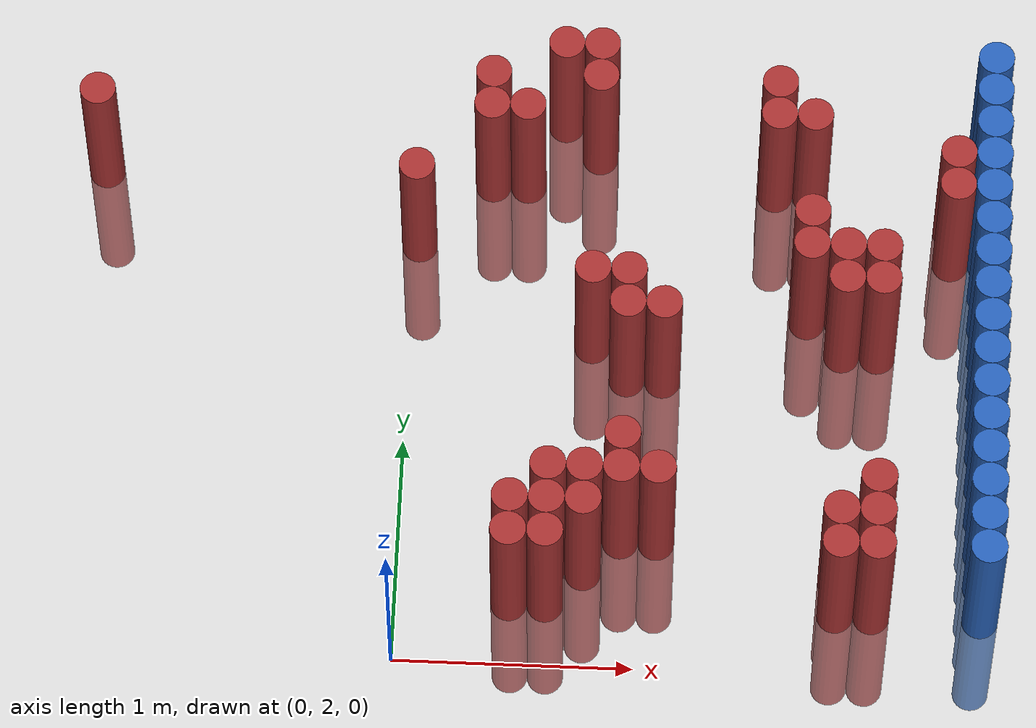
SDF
<sdf version="1.6">
 <world name="default">
  <model name="ground_plane">
   <static>1</static>
   <link name="link">
    <collision name="collision">
     <geometry><plane><normal>0 0 1</normal><size>100 100</size></plane></geometry>
     <surface><friction><ode><mu>100</mu><mu2>50</mu2></ode></friction></surface>
    </collision>
    <visual name="visual">
     <cast_shadows>0</cast_shadows>
     <geometry><plane><normal>0 0 1</normal><size>100 100</size></plane></geometry>
     <material>
      <script><uri>file://media/materials/scripts/gazebo.material</uri><name>Gazebo/Grey</name></script>
     </material>
    </visual>
   </link>
  </model>
  <model name="unit_cylinder_153">
   <static>1</static>
   <pose>-1.325000 4.225000 0.000000 0.000000 0.000000 0.000000</pose>
   <link name="link">
    <inertial>
     <mass>1</mass>
     <inertia><ixx>0.145833</ixx><ixy>0</ixy><ixz>0</ixz><iyy>0.145833</iyy><iyz>0</iyz><izz>0.125</izz></inertia>
    </inertial>
    <collision name="collision">
     <geometry><cylinder><radius>0.075000</radius><length>1.5</length></cylinder></geometry>
    </collision>
    <visual name="visual">
     <geometry><cylinder><radius>0.075000</radius><length>1.5</length></cylinder></geometry>
     <material>
      <ambient>0.648000 0.192000 0.192000 1</ambient>
      <diffuse>0.648000 0.192000 0.192000 1</diffuse>
     </material>
     <material>
      <script><name>Gazebo/Grey</name><uri>file://media/materials/scripts/gazebo.material</uri></script>
     </material>
    </visual>
   </link>
  </model>
  <model name="unit_cylinder_157">
   <static>1</static>
   <pose>0.025000 3.925000 0.000000 0.000000 0.000000 0.000000</pose>
   <link name="link">
    <inertial>
     <mass>1</mass>
     <inertia><ixx>0.145833</ixx><ixy>0</ixy><ixz>0</ixz><iyy>0.145833</iyy><iyz>0</iyz><izz>0.125</izz></inertia>
    </inertial>
    <collision name="collision">
     <geometry><cylinder><radius>0.075000</radius><length>1.5</length></cylinder></geometry>
    </collision>
    <visual name="visual">
     <geometry><cylinder><radius>0.075000</radius><length>1.5</length></cylinder></geometry>
     <material>
      <ambient>0.648000 0.192000 0.192000 1</ambient>
      <diffuse>0.648000 0.192000 0.192000 1</diffuse>
     </material>
     <material>
      <script><name>Gazebo/Grey</name><uri>file://media/materials/scripts/gazebo.material</uri></script>
     </material>
    </visual>
   </link>
  </model>
  <model name="unit_cylinder_167">
   <static>1</static>
   <pose>0.325000 4.225000 0.000000 0.000000 0.000000 0.000000</pose>
   <link name="link">
    <inertial>
     <mass>1</mass>
     <inertia><ixx>0.145833</ixx><ixy>0</ixy><ixz>0</ixz><iyy>0.145833</iyy><iyz>0</iyz><izz>0.125</izz></inertia>
    </inertial>
    <collision name="collision">
     <geometry><cylinder><radius>0.075000</radius><length>1.5</length></cylinder></geometry>
    </collision>
    <visual name="visual">
     <geometry><cylinder><radius>0.075000</radius><length>1.5</length></cylinder></geometry>
     <material>
      <ambient>0.648000 0.192000 0.192000 1</ambient>
      <diffuse>0.648000 0.192000 0.192000 1</diffuse>
     </material>
     <material>
      <script><name>Gazebo/Grey</name><uri>file://media/materials/scripts/gazebo.material</uri></script>
     </material>
    </visual>
   </link>
  </model>
  <model name="unit_cylinder_168">
   <static>1</static>
   <pose>0.325000 4.375000 0.000000 0.000000 0.000000 0.000000</pose>
   <link name="link">
    <inertial>
     <mass>1</mass>
     <inertia><ixx>0.145833</ixx><ixy>0</ixy><ixz>0</ixz><iyy>0.145833</iyy><iyz>0</iyz><izz>0.125</izz></inertia>
    </inertial>
    <collision name="collision">
     <geometry><cylinder><radius>0.075000</radius><length>1.5</length></cylinder></geometry>
    </collision>
    <visual name="visual">
     <geometry><cylinder><radius>0.075000</radius><length>1.5</length></cylinder></geometry>
     <material>
      <ambient>0.648000 0.192000 0.192000 1</ambient>
      <diffuse>0.648000 0.192000 0.192000 1</diffuse>
     </material>
     <material>
      <script><name>Gazebo/Grey</name><uri>file://media/materials/scripts/gazebo.material</uri></script>
     </material>
    </visual>
   </link>
  </model>
  <model name="unit_cylinder_175">
   <static>1</static>
   <pose>0.475000 2.275000 0.000000 0.000000 0.000000 0.000000</pose>
   <link name="link">
    <inertial>
     <mass>1</mass>
     <inertia><ixx>0.145833</ixx><ixy>0</ixy><ixz>0</ixz><iyy>0.145833</iyy><iyz>0</iyz><izz>0.125</izz></inertia>
    </inertial>
    <collision name="collision">
     <geometry><cylinder><radius>0.075000</radius><length>1.5</length></cylinder></geometry>
    </collision>
    <visual name="visual">
     <geometry><cylinder><radius>0.075000</radius><length>1.5</length></cylinder></geometry>
     <material>
      <ambient>0.648000 0.192000 0.192000 1</ambient>
      <diffuse>0.648000 0.192000 0.192000 1</diffuse>
     </material>
     <material>
      <script><name>Gazebo/Grey</name><uri>file://media/materials/scripts/gazebo.material</uri></script>
     </material>
    </visual>
   </link>
  </model>
  <model name="unit_cylinder_176">
   <static>1</static>
   <pose>0.475000 2.425000 0.000000 0.000000 0.000000 0.000000</pose>
   <link name="link">
    <inertial>
     <mass>1</mass>
     <inertia><ixx>0.145833</ixx><ixy>0</ixy><ixz>0</ixz><iyy>0.145833</iyy><iyz>0</iyz><izz>0.125</izz></inertia>
    </inertial>
    <collision name="collision">
     <geometry><cylinder><radius>0.075000</radius><length>1.5</length></cylinder></geometry>
    </collision>
    <visual name="visual">
     <geometry><cylinder><radius>0.075000</radius><length>1.5</length></cylinder></geometry>
     <material>
      <ambient>0.648000 0.192000 0.192000 1</ambient>
      <diffuse>0.648000 0.192000 0.192000 1</diffuse>
     </material>
     <material>
      <script><name>Gazebo/Grey</name><uri>file://media/materials/scripts/gazebo.material</uri></script>
     </material>
    </visual>
   </link>
  </model>
  <model name="unit_cylinder_177">
   <static>1</static>
   <pose>0.475000 4.225000 0.000000 0.000000 0.000000 0.000000</pose>
   <link name="link">
    <inertial>
     <mass>1</mass>
     <inertia><ixx>0.145833</ixx><ixy>0</ixy><ixz>0</ixz><iyy>0.145833</iyy><iyz>0</iyz><izz>0.125</izz></inertia>
    </inertial>
    <collision name="collision">
     <geometry><cylinder><radius>0.075000</radius><length>1.5</length></cylinder></geometry>
    </collision>
    <visual name="visual">
     <geometry><cylinder><radius>0.075000</radius><length>1.5</length></cylinder></geometry>
     <material>
      <ambient>0.648000 0.192000 0.192000 1</ambient>
      <diffuse>0.648000 0.192000 0.192000 1</diffuse>
     </material>
     <material>
      <script><name>Gazebo/Grey</name><uri>file://media/materials/scripts/gazebo.material</uri></script>
     </material>
    </visual>
   </link>
  </model>
  <model name="unit_cylinder_178">
   <static>1</static>
   <pose>0.625000 2.275000 0.000000 0.000000 0.000000 0.000000</pose>
   <link name="link">
    <inertial>
     <mass>1</mass>
     <inertia><ixx>0.145833</ixx><ixy>0</ixy><ixz>0</ixz><iyy>0.145833</iyy><iyz>0</iyz><izz>0.125</izz></inertia>
    </inertial>
    <collision name="collision">
     <geometry><cylinder><radius>0.075000</radius><length>1.5</length></cylinder></geometry>
    </collision>
    <visual name="visual">
     <geometry><cylinder><radius>0.075000</radius><length>1.5</length></cylinder></geometry>
     <material>
      <ambient>0.648000 0.192000 0.192000 1</ambient>
      <diffuse>0.648000 0.192000 0.192000 1</diffuse>
     </material>
     <material>
      <script><name>Gazebo/Grey</name><uri>file://media/materials/scripts/gazebo.material</uri></script>
     </material>
    </visual>
   </link>
  </model>
  <model name="unit_cylinder_179">
   <static>1</static>
   <pose>0.625000 2.425000 0.000000 0.000000 0.000000 0.000000</pose>
   <link name="link">
    <inertial>
     <mass>1</mass>
     <inertia><ixx>0.145833</ixx><ixy>0</ixy><ixz>0</ixz><iyy>0.145833</iyy><iyz>0</iyz><izz>0.125</izz></inertia>
    </inertial>
    <collision name="collision">
     <geometry><cylinder><radius>0.075000</radius><length>1.5</length></cylinder></geometry>
    </collision>
    <visual name="visual">
     <geometry><cylinder><radius>0.075000</radius><length>1.5</length></cylinder></geometry>
     <material>
      <ambient>0.648000 0.192000 0.192000 1</ambient>
      <diffuse>0.648000 0.192000 0.192000 1</diffuse>
     </material>
     <material>
      <script><name>Gazebo/Grey</name><uri>file://media/materials/scripts/gazebo.material</uri></script>
     </material>
    </visual>
   </link>
  </model>
  <model name="unit_cylinder_180">
   <static>1</static>
   <pose>0.625000 2.575000 0.000000 0.000000 0.000000 0.000000</pose>
   <link name="link">
    <inertial>
     <mass>1</mass>
     <inertia><ixx>0.145833</ixx><ixy>0</ixy><ixz>0</ixz><iyy>0.145833</iyy><iyz>0</iyz><izz>0.125</izz></inertia>
    </inertial>
    <collision name="collision">
     <geometry><cylinder><radius>0.075000</radius><length>1.5</length></cylinder></geometry>
    </collision>
    <visual name="visual">
     <geometry><cylinder><radius>0.075000</radius><length>1.5</length></cylinder></geometry>
     <material>
      <ambient>0.648000 0.192000 0.192000 1</ambient>
      <diffuse>0.648000 0.192000 0.192000 1</diffuse>
     </material>
     <material>
      <script><name>Gazebo/Grey</name><uri>file://media/materials/scripts/gazebo.material</uri></script>
     </material>
    </visual>
   </link>
  </model>
  <model name="unit_cylinder_181">
   <static>1</static>
   <pose>0.625000 4.525000 0.000000 0.000000 0.000000 0.000000</pose>
   <link name="link">
    <inertial>
     <mass>1</mass>
     <inertia><ixx>0.145833</ixx><ixy>0</ixy><ixz>0</ixz><iyy>0.145833</iyy><iyz>0</iyz><izz>0.125</izz></inertia>
    </inertial>
    <collision name="collision">
     <geometry><cylinder><radius>0.075000</radius><length>1.5</length></cylinder></geometry>
    </collision>
    <visual name="visual">
     <geometry><cylinder><radius>0.075000</radius><length>1.5</length></cylinder></geometry>
     <material>
      <ambient>0.648000 0.192000 0.192000 1</ambient>
      <diffuse>0.648000 0.192000 0.192000 1</diffuse>
     </material>
     <material>
      <script><name>Gazebo/Grey</name><uri>file://media/materials/scripts/gazebo.material</uri></script>
     </material>
    </visual>
   </link>
  </model>
  <model name="unit_cylinder_184">
   <static>1</static>
   <pose>0.775000 2.425000 0.000000 0.000000 0.000000 0.000000</pose>
   <link name="link">
    <inertial>
     <mass>1</mass>
     <inertia><ixx>0.145833</ixx><ixy>0</ixy><ixz>0</ixz><iyy>0.145833</iyy><iyz>0</iyz><izz>0.125</izz></inertia>
    </inertial>
    <collision name="collision">
     <geometry><cylinder><radius>0.075000</radius><length>1.5</length></cylinder></geometry>
    </collision>
    <visual name="visual">
     <geometry><cylinder><radius>0.075000</radius><length>1.5</length></cylinder></geometry>
     <material>
      <ambient>0.648000 0.192000 0.192000 1</ambient>
      <diffuse>0.648000 0.192000 0.192000 1</diffuse>
     </material>
     <material>
      <script><name>Gazebo/Grey</name><uri>file://media/materials/scripts/gazebo.material</uri></script>
     </material>
    </visual>
   </link>
  </model>
  <model name="unit_cylinder_185">
   <static>1</static>
   <pose>0.775000 2.575000 0.000000 0.000000 0.000000 0.000000</pose>
   <link name="link">
    <inertial>
     <mass>1</mass>
     <inertia><ixx>0.145833</ixx><ixy>0</ixy><ixz>0</ixz><iyy>0.145833</iyy><iyz>0</iyz><izz>0.125</izz></inertia>
    </inertial>
    <collision name="collision">
     <geometry><cylinder><radius>0.075000</radius><length>1.5</length></cylinder></geometry>
    </collision>
    <visual name="visual">
     <geometry><cylinder><radius>0.075000</radius><length>1.5</length></cylinder></geometry>
     <material>
      <ambient>0.648000 0.192000 0.192000 1</ambient>
      <diffuse>0.648000 0.192000 0.192000 1</diffuse>
     </material>
     <material>
      <script><name>Gazebo/Grey</name><uri>file://media/materials/scripts/gazebo.material</uri></script>
     </material>
    </visual>
   </link>
  </model>
  <model name="unit_cylinder_186">
   <static>1</static>
   <pose>0.775000 3.475000 0.000000 0.000000 0.000000 0.000000</pose>
   <link name="link">
    <inertial>
     <mass>1</mass>
     <inertia><ixx>0.145833</ixx><ixy>0</ixy><ixz>0</ixz><iyy>0.145833</iyy><iyz>0</iyz><izz>0.125</izz></inertia>
    </inertial>
    <collision name="collision">
     <geometry><cylinder><radius>0.075000</radius><length>1.5</length></cylinder></geometry>
    </collision>
    <visual name="visual">
     <geometry><cylinder><radius>0.075000</radius><length>1.5</length></cylinder></geometry>
     <material>
      <ambient>0.648000 0.192000 0.192000 1</ambient>
      <diffuse>0.648000 0.192000 0.192000 1</diffuse>
     </material>
     <material>
      <script><name>Gazebo/Grey</name><uri>file://media/materials/scripts/gazebo.material</uri></script>
     </material>
    </visual>
   </link>
  </model>
  <model name="unit_cylinder_187">
   <static>1</static>
   <pose>0.775000 4.375000 0.000000 0.000000 0.000000 0.000000</pose>
   <link name="link">
    <inertial>
     <mass>1</mass>
     <inertia><ixx>0.145833</ixx><ixy>0</ixy><ixz>0</ixz><iyy>0.145833</iyy><iyz>0</iyz><izz>0.125</izz></inertia>
    </inertial>
    <collision name="collision">
     <geometry><cylinder><radius>0.075000</radius><length>1.5</length></cylinder></geometry>
    </collision>
    <visual name="visual">
     <geometry><cylinder><radius>0.075000</radius><length>1.5</length></cylinder></geometry>
     <material>
      <ambient>0.648000 0.192000 0.192000 1</ambient>
      <diffuse>0.648000 0.192000 0.192000 1</diffuse>
     </material>
     <material>
      <script><name>Gazebo/Grey</name><uri>file://media/materials/scripts/gazebo.material</uri></script>
     </material>
    </visual>
   </link>
  </model>
  <model name="unit_cylinder_188">
   <static>1</static>
   <pose>0.775000 4.525000 0.000000 0.000000 0.000000 0.000000</pose>
   <link name="link">
    <inertial>
     <mass>1</mass>
     <inertia><ixx>0.145833</ixx><ixy>0</ixy><ixz>0</ixz><iyy>0.145833</iyy><iyz>0</iyz><izz>0.125</izz></inertia>
    </inertial>
    <collision name="collision">
     <geometry><cylinder><radius>0.075000</radius><length>1.5</length></cylinder></geometry>
    </collision>
    <visual name="visual">
     <geometry><cylinder><radius>0.075000</radius><length>1.5</length></cylinder></geometry>
     <material>
      <ambient>0.648000 0.192000 0.192000 1</ambient>
      <diffuse>0.648000 0.192000 0.192000 1</diffuse>
     </material>
     <material>
      <script><name>Gazebo/Grey</name><uri>file://media/materials/scripts/gazebo.material</uri></script>
     </material>
    </visual>
   </link>
  </model>
  <model name="unit_cylinder_191">
   <static>1</static>
   <pose>0.925000 2.575000 0.000000 0.000000 0.000000 0.000000</pose>
   <link name="link">
    <inertial>
     <mass>1</mass>
     <inertia><ixx>0.145833</ixx><ixy>0</ixy><ixz>0</ixz><iyy>0.145833</iyy><iyz>0</iyz><izz>0.125</izz></inertia>
    </inertial>
    <collision name="collision">
     <geometry><cylinder><radius>0.075000</radius><length>1.5</length></cylinder></geometry>
    </collision>
    <visual name="visual">
     <geometry><cylinder><radius>0.075000</radius><length>1.5</length></cylinder></geometry>
     <material>
      <ambient>0.648000 0.192000 0.192000 1</ambient>
      <diffuse>0.648000 0.192000 0.192000 1</diffuse>
     </material>
     <material>
      <script><name>Gazebo/Grey</name><uri>file://media/materials/scripts/gazebo.material</uri></script>
     </material>
    </visual>
   </link>
  </model>
  <model name="unit_cylinder_192">
   <static>1</static>
   <pose>0.925000 2.725000 0.000000 0.000000 0.000000 0.000000</pose>
   <link name="link">
    <inertial>
     <mass>1</mass>
     <inertia><ixx>0.145833</ixx><ixy>0</ixy><ixz>0</ixz><iyy>0.145833</iyy><iyz>0</iyz><izz>0.125</izz></inertia>
    </inertial>
    <collision name="collision">
     <geometry><cylinder><radius>0.075000</radius><length>1.5</length></cylinder></geometry>
    </collision>
    <visual name="visual">
     <geometry><cylinder><radius>0.075000</radius><length>1.5</length></cylinder></geometry>
     <material>
      <ambient>0.648000 0.192000 0.192000 1</ambient>
      <diffuse>0.648000 0.192000 0.192000 1</diffuse>
     </material>
     <material>
      <script><name>Gazebo/Grey</name><uri>file://media/materials/scripts/gazebo.material</uri></script>
     </material>
    </visual>
   </link>
  </model>
  <model name="unit_cylinder_193">
   <static>1</static>
   <pose>0.925000 3.325000 0.000000 0.000000 0.000000 0.000000</pose>
   <link name="link">
    <inertial>
     <mass>1</mass>
     <inertia><ixx>0.145833</ixx><ixy>0</ixy><ixz>0</ixz><iyy>0.145833</iyy><iyz>0</iyz><izz>0.125</izz></inertia>
    </inertial>
    <collision name="collision">
     <geometry><cylinder><radius>0.075000</radius><length>1.5</length></cylinder></geometry>
    </collision>
    <visual name="visual">
     <geometry><cylinder><radius>0.075000</radius><length>1.5</length></cylinder></geometry>
     <material>
      <ambient>0.648000 0.192000 0.192000 1</ambient>
      <diffuse>0.648000 0.192000 0.192000 1</diffuse>
     </material>
     <material>
      <script><name>Gazebo/Grey</name><uri>file://media/materials/scripts/gazebo.material</uri></script>
     </material>
    </visual>
   </link>
  </model>
  <model name="unit_cylinder_194">
   <static>1</static>
   <pose>0.925000 3.475000 0.000000 0.000000 0.000000 0.000000</pose>
   <link name="link">
    <inertial>
     <mass>1</mass>
     <inertia><ixx>0.145833</ixx><ixy>0</ixy><ixz>0</ixz><iyy>0.145833</iyy><iyz>0</iyz><izz>0.125</izz></inertia>
    </inertial>
    <collision name="collision">
     <geometry><cylinder><radius>0.075000</radius><length>1.5</length></cylinder></geometry>
    </collision>
    <visual name="visual">
     <geometry><cylinder><radius>0.075000</radius><length>1.5</length></cylinder></geometry>
     <material>
      <ambient>0.648000 0.192000 0.192000 1</ambient>
      <diffuse>0.648000 0.192000 0.192000 1</diffuse>
     </material>
     <material>
      <script><name>Gazebo/Grey</name><uri>file://media/materials/scripts/gazebo.material</uri></script>
     </material>
    </visual>
   </link>
  </model>
  <model name="unit_cylinder_195">
   <static>1</static>
   <pose>1.075000 2.575000 0.000000 0.000000 0.000000 0.000000</pose>
   <link name="link">
    <inertial>
     <mass>1</mass>
     <inertia><ixx>0.145833</ixx><ixy>0</ixy><ixz>0</ixz><iyy>0.145833</iyy><iyz>0</iyz><izz>0.125</izz></inertia>
    </inertial>
    <collision name="collision">
     <geometry><cylinder><radius>0.075000</radius><length>1.5</length></cylinder></geometry>
    </collision>
    <visual name="visual">
     <geometry><cylinder><radius>0.075000</radius><length>1.5</length></cylinder></geometry>
     <material>
      <ambient>0.648000 0.192000 0.192000 1</ambient>
      <diffuse>0.648000 0.192000 0.192000 1</diffuse>
     </material>
     <material>
      <script><name>Gazebo/Grey</name><uri>file://media/materials/scripts/gazebo.material</uri></script>
     </material>
    </visual>
   </link>
  </model>
  <model name="unit_cylinder_196">
   <static>1</static>
   <pose>1.075000 3.325000 0.000000 0.000000 0.000000 0.000000</pose>
   <link name="link">
    <inertial>
     <mass>1</mass>
     <inertia><ixx>0.145833</ixx><ixy>0</ixy><ixz>0</ixz><iyy>0.145833</iyy><iyz>0</iyz><izz>0.125</izz></inertia>
    </inertial>
    <collision name="collision">
     <geometry><cylinder><radius>0.075000</radius><length>1.5</length></cylinder></geometry>
    </collision>
    <visual name="visual">
     <geometry><cylinder><radius>0.075000</radius><length>1.5</length></cylinder></geometry>
     <material>
      <ambient>0.648000 0.192000 0.192000 1</ambient>
      <diffuse>0.648000 0.192000 0.192000 1</diffuse>
     </material>
     <material>
      <script><name>Gazebo/Grey</name><uri>file://media/materials/scripts/gazebo.material</uri></script>
     </material>
    </visual>
   </link>
  </model>
  <model name="unit_cylinder_201">
   <static>1</static>
   <pose>1.525000 4.225000 0.000000 0.000000 0.000000 0.000000</pose>
   <link name="link">
    <inertial>
     <mass>1</mass>
     <inertia><ixx>0.145833</ixx><ixy>0</ixy><ixz>0</ixz><iyy>0.145833</iyy><iyz>0</iyz><izz>0.125</izz></inertia>
    </inertial>
    <collision name="collision">
     <geometry><cylinder><radius>0.075000</radius><length>1.5</length></cylinder></geometry>
    </collision>
    <visual name="visual">
     <geometry><cylinder><radius>0.075000</radius><length>1.5</length></cylinder></geometry>
     <material>
      <ambient>0.648000 0.192000 0.192000 1</ambient>
      <diffuse>0.648000 0.192000 0.192000 1</diffuse>
     </material>
     <material>
      <script><name>Gazebo/Grey</name><uri>file://media/materials/scripts/gazebo.material</uri></script>
     </material>
    </visual>
   </link>
  </model>
  <model name="unit_cylinder_202">
   <static>1</static>
   <pose>1.525000 4.375000 0.000000 0.000000 0.000000 0.000000</pose>
   <link name="link">
    <inertial>
     <mass>1</mass>
     <inertia><ixx>0.145833</ixx><ixy>0</ixy><ixz>0</ixz><iyy>0.145833</iyy><iyz>0</iyz><izz>0.125</izz></inertia>
    </inertial>
    <collision name="collision">
     <geometry><cylinder><radius>0.075000</radius><length>1.5</length></cylinder></geometry>
    </collision>
    <visual name="visual">
     <geometry><cylinder><radius>0.075000</radius><length>1.5</length></cylinder></geometry>
     <material>
      <ambient>0.648000 0.192000 0.192000 1</ambient>
      <diffuse>0.648000 0.192000 0.192000 1</diffuse>
     </material>
     <material>
      <script><name>Gazebo/Grey</name><uri>file://media/materials/scripts/gazebo.material</uri></script>
     </material>
    </visual>
   </link>
  </model>
  <model name="unit_cylinder_203">
   <static>1</static>
   <pose>1.675000 3.625000 0.000000 0.000000 0.000000 0.000000</pose>
   <link name="link">
    <inertial>
     <mass>1</mass>
     <inertia><ixx>0.145833</ixx><ixy>0</ixy><ixz>0</ixz><iyy>0.145833</iyy><iyz>0</iyz><izz>0.125</izz></inertia>
    </inertial>
    <collision name="collision">
     <geometry><cylinder><radius>0.075000</radius><length>1.5</length></cylinder></geometry>
    </collision>
    <visual name="visual">
     <geometry><cylinder><radius>0.075000</radius><length>1.5</length></cylinder></geometry>
     <material>
      <ambient>0.648000 0.192000 0.192000 1</ambient>
      <diffuse>0.648000 0.192000 0.192000 1</diffuse>
     </material>
     <material>
      <script><name>Gazebo/Grey</name><uri>file://media/materials/scripts/gazebo.material</uri></script>
     </material>
    </visual>
   </link>
  </model>
  <model name="unit_cylinder_204">
   <static>1</static>
   <pose>1.675000 3.775000 0.000000 0.000000 0.000000 0.000000</pose>
   <link name="link">
    <inertial>
     <mass>1</mass>
     <inertia><ixx>0.145833</ixx><ixy>0</ixy><ixz>0</ixz><iyy>0.145833</iyy><iyz>0</iyz><izz>0.125</izz></inertia>
    </inertial>
    <collision name="collision">
     <geometry><cylinder><radius>0.075000</radius><length>1.5</length></cylinder></geometry>
    </collision>
    <visual name="visual">
     <geometry><cylinder><radius>0.075000</radius><length>1.5</length></cylinder></geometry>
     <material>
      <ambient>0.648000 0.192000 0.192000 1</ambient>
      <diffuse>0.648000 0.192000 0.192000 1</diffuse>
     </material>
     <material>
      <script><name>Gazebo/Grey</name><uri>file://media/materials/scripts/gazebo.material</uri></script>
     </material>
    </visual>
   </link>
  </model>
  <model name="unit_cylinder_205">
   <static>1</static>
   <pose>1.675000 4.225000 0.000000 0.000000 0.000000 0.000000</pose>
   <link name="link">
    <inertial>
     <mass>1</mass>
     <inertia><ixx>0.145833</ixx><ixy>0</ixy><ixz>0</ixz><iyy>0.145833</iyy><iyz>0</iyz><izz>0.125</izz></inertia>
    </inertial>
    <collision name="collision">
     <geometry><cylinder><radius>0.075000</radius><length>1.5</length></cylinder></geometry>
    </collision>
    <visual name="visual">
     <geometry><cylinder><radius>0.075000</radius><length>1.5</length></cylinder></geometry>
     <material>
      <ambient>0.648000 0.192000 0.192000 1</ambient>
      <diffuse>0.648000 0.192000 0.192000 1</diffuse>
     </material>
     <material>
      <script><name>Gazebo/Grey</name><uri>file://media/materials/scripts/gazebo.material</uri></script>
     </material>
    </visual>
   </link>
  </model>
  <model name="unit_cylinder_208">
   <static>1</static>
   <pose>1.825000 2.275000 0.000000 0.000000 0.000000 0.000000</pose>
   <link name="link">
    <inertial>
     <mass>1</mass>
     <inertia><ixx>0.145833</ixx><ixy>0</ixy><ixz>0</ixz><iyy>0.145833</iyy><iyz>0</iyz><izz>0.125</izz></inertia>
    </inertial>
    <collision name="collision">
     <geometry><cylinder><radius>0.075000</radius><length>1.5</length></cylinder></geometry>
    </collision>
    <visual name="visual">
     <geometry><cylinder><radius>0.075000</radius><length>1.5</length></cylinder></geometry>
     <material>
      <ambient>0.648000 0.192000 0.192000 1</ambient>
      <diffuse>0.648000 0.192000 0.192000 1</diffuse>
     </material>
     <material>
      <script><name>Gazebo/Grey</name><uri>file://media/materials/scripts/gazebo.material</uri></script>
     </material>
    </visual>
   </link>
  </model>
  <model name="unit_cylinder_209">
   <static>1</static>
   <pose>1.825000 2.425000 0.000000 0.000000 0.000000 0.000000</pose>
   <link name="link">
    <inertial>
     <mass>1</mass>
     <inertia><ixx>0.145833</ixx><ixy>0</ixy><ixz>0</ixz><iyy>0.145833</iyy><iyz>0</iyz><izz>0.125</izz></inertia>
    </inertial>
    <collision name="collision">
     <geometry><cylinder><radius>0.075000</radius><length>1.5</length></cylinder></geometry>
    </collision>
    <visual name="visual">
     <geometry><cylinder><radius>0.075000</radius><length>1.5</length></cylinder></geometry>
     <material>
      <ambient>0.648000 0.192000 0.192000 1</ambient>
      <diffuse>0.648000 0.192000 0.192000 1</diffuse>
     </material>
     <material>
      <script><name>Gazebo/Grey</name><uri>file://media/materials/scripts/gazebo.material</uri></script>
     </material>
    </visual>
   </link>
  </model>
  <model name="unit_cylinder_210">
   <static>1</static>
   <pose>1.825000 3.475000 0.000000 0.000000 0.000000 0.000000</pose>
   <link name="link">
    <inertial>
     <mass>1</mass>
     <inertia><ixx>0.145833</ixx><ixy>0</ixy><ixz>0</ixz><iyy>0.145833</iyy><iyz>0</iyz><izz>0.125</izz></inertia>
    </inertial>
    <collision name="collision">
     <geometry><cylinder><radius>0.075000</radius><length>1.5</length></cylinder></geometry>
    </collision>
    <visual name="visual">
     <geometry><cylinder><radius>0.075000</radius><length>1.5</length></cylinder></geometry>
     <material>
      <ambient>0.648000 0.192000 0.192000 1</ambient>
      <diffuse>0.648000 0.192000 0.192000 1</diffuse>
     </material>
     <material>
      <script><name>Gazebo/Grey</name><uri>file://media/materials/scripts/gazebo.material</uri></script>
     </material>
    </visual>
   </link>
  </model>
  <model name="unit_cylinder_211">
   <static>1</static>
   <pose>1.825000 3.625000 0.000000 0.000000 0.000000 0.000000</pose>
   <link name="link">
    <inertial>
     <mass>1</mass>
     <inertia><ixx>0.145833</ixx><ixy>0</ixy><ixz>0</ixz><iyy>0.145833</iyy><iyz>0</iyz><izz>0.125</izz></inertia>
    </inertial>
    <collision name="collision">
     <geometry><cylinder><radius>0.075000</radius><length>1.5</length></cylinder></geometry>
    </collision>
    <visual name="visual">
     <geometry><cylinder><radius>0.075000</radius><length>1.5</length></cylinder></geometry>
     <material>
      <ambient>0.648000 0.192000 0.192000 1</ambient>
      <diffuse>0.648000 0.192000 0.192000 1</diffuse>
     </material>
     <material>
      <script><name>Gazebo/Grey</name><uri>file://media/materials/scripts/gazebo.material</uri></script>
     </material>
    </visual>
   </link>
  </model>
  <model name="unit_cylinder_217">
   <static>1</static>
   <pose>1.975000 2.275000 0.000000 0.000000 0.000000 0.000000</pose>
   <link name="link">
    <inertial>
     <mass>1</mass>
     <inertia><ixx>0.145833</ixx><ixy>0</ixy><ixz>0</ixz><iyy>0.145833</iyy><iyz>0</iyz><izz>0.125</izz></inertia>
    </inertial>
    <collision name="collision">
     <geometry><cylinder><radius>0.075000</radius><length>1.5</length></cylinder></geometry>
    </collision>
    <visual name="visual">
     <geometry><cylinder><radius>0.075000</radius><length>1.5</length></cylinder></geometry>
     <material>
      <ambient>0.648000 0.192000 0.192000 1</ambient>
      <diffuse>0.648000 0.192000 0.192000 1</diffuse>
     </material>
     <material>
      <script><name>Gazebo/Grey</name><uri>file://media/materials/scripts/gazebo.material</uri></script>
     </material>
    </visual>
   </link>
  </model>
  <model name="unit_cylinder_218">
   <static>1</static>
   <pose>1.975000 2.425000 0.000000 0.000000 0.000000 0.000000</pose>
   <link name="link">
    <inertial>
     <mass>1</mass>
     <inertia><ixx>0.145833</ixx><ixy>0</ixy><ixz>0</ixz><iyy>0.145833</iyy><iyz>0</iyz><izz>0.125</izz></inertia>
    </inertial>
    <collision name="collision">
     <geometry><cylinder><radius>0.075000</radius><length>1.5</length></cylinder></geometry>
    </collision>
    <visual name="visual">
     <geometry><cylinder><radius>0.075000</radius><length>1.5</length></cylinder></geometry>
     <material>
      <ambient>0.648000 0.192000 0.192000 1</ambient>
      <diffuse>0.648000 0.192000 0.192000 1</diffuse>
     </material>
     <material>
      <script><name>Gazebo/Grey</name><uri>file://media/materials/scripts/gazebo.material</uri></script>
     </material>
    </visual>
   </link>
  </model>
  <model name="unit_cylinder_219">
   <static>1</static>
   <pose>1.975000 2.575000 0.000000 0.000000 0.000000 0.000000</pose>
   <link name="link">
    <inertial>
     <mass>1</mass>
     <inertia><ixx>0.145833</ixx><ixy>0</ixy><ixz>0</ixz><iyy>0.145833</iyy><iyz>0</iyz><izz>0.125</izz></inertia>
    </inertial>
    <collision name="collision">
     <geometry><cylinder><radius>0.075000</radius><length>1.5</length></cylinder></geometry>
    </collision>
    <visual name="visual">
     <geometry><cylinder><radius>0.075000</radius><length>1.5</length></cylinder></geometry>
     <material>
      <ambient>0.648000 0.192000 0.192000 1</ambient>
      <diffuse>0.648000 0.192000 0.192000 1</diffuse>
     </material>
     <material>
      <script><name>Gazebo/Grey</name><uri>file://media/materials/scripts/gazebo.material</uri></script>
     </material>
    </visual>
   </link>
  </model>
  <model name="unit_cylinder_220">
   <static>1</static>
   <pose>1.975000 3.475000 0.000000 0.000000 0.000000 0.000000</pose>
   <link name="link">
    <inertial>
     <mass>1</mass>
     <inertia><ixx>0.145833</ixx><ixy>0</ixy><ixz>0</ixz><iyy>0.145833</iyy><iyz>0</iyz><izz>0.125</izz></inertia>
    </inertial>
    <collision name="collision">
     <geometry><cylinder><radius>0.075000</radius><length>1.5</length></cylinder></geometry>
    </collision>
    <visual name="visual">
     <geometry><cylinder><radius>0.075000</radius><length>1.5</length></cylinder></geometry>
     <material>
      <ambient>0.648000 0.192000 0.192000 1</ambient>
      <diffuse>0.648000 0.192000 0.192000 1</diffuse>
     </material>
     <material>
      <script><name>Gazebo/Grey</name><uri>file://media/materials/scripts/gazebo.material</uri></script>
     </material>
    </visual>
   </link>
  </model>
  <model name="unit_cylinder_221">
   <static>1</static>
   <pose>1.975000 3.625000 0.000000 0.000000 0.000000 0.000000</pose>
   <link name="link">
    <inertial>
     <mass>1</mass>
     <inertia><ixx>0.145833</ixx><ixy>0</ixy><ixz>0</ixz><iyy>0.145833</iyy><iyz>0</iyz><izz>0.125</izz></inertia>
    </inertial>
    <collision name="collision">
     <geometry><cylinder><radius>0.075000</radius><length>1.5</length></cylinder></geometry>
    </collision>
    <visual name="visual">
     <geometry><cylinder><radius>0.075000</radius><length>1.5</length></cylinder></geometry>
     <material>
      <ambient>0.648000 0.192000 0.192000 1</ambient>
      <diffuse>0.648000 0.192000 0.192000 1</diffuse>
     </material>
     <material>
      <script><name>Gazebo/Grey</name><uri>file://media/materials/scripts/gazebo.material</uri></script>
     </material>
    </visual>
   </link>
  </model>
  <model name="unit_cylinder_235">
   <static>1</static>
   <pose>2.275000 3.925000 0.000000 0.000000 0.000000 0.000000</pose>
   <link name="link">
    <inertial>
     <mass>1</mass>
     <inertia><ixx>0.145833</ixx><ixy>0</ixy><ixz>0</ixz><iyy>0.145833</iyy><iyz>0</iyz><izz>0.125</izz></inertia>
    </inertial>
    <collision name="collision">
     <geometry><cylinder><radius>0.075000</radius><length>1.5</length></cylinder></geometry>
    </collision>
    <visual name="visual">
     <geometry><cylinder><radius>0.075000</radius><length>1.5</length></cylinder></geometry>
     <material>
      <ambient>0.648000 0.192000 0.192000 1</ambient>
      <diffuse>0.648000 0.192000 0.192000 1</diffuse>
     </material>
     <material>
      <script><name>Gazebo/Grey</name><uri>file://media/materials/scripts/gazebo.material</uri></script>
     </material>
    </visual>
   </link>
  </model>
  <model name="unit_cylinder_236">
   <static>1</static>
   <pose>2.275000 4.075000 0.000000 0.000000 0.000000 0.000000</pose>
   <link name="link">
    <inertial>
     <mass>1</mass>
     <inertia><ixx>0.145833</ixx><ixy>0</ixy><ixz>0</ixz><iyy>0.145833</iyy><iyz>0</iyz><izz>0.125</izz></inertia>
    </inertial>
    <collision name="collision">
     <geometry><cylinder><radius>0.075000</radius><length>1.5</length></cylinder></geometry>
    </collision>
    <visual name="visual">
     <geometry><cylinder><radius>0.075000</radius><length>1.5</length></cylinder></geometry>
     <material>
      <ambient>0.648000 0.192000 0.192000 1</ambient>
      <diffuse>0.648000 0.192000 0.192000 1</diffuse>
     </material>
     <material>
      <script><name>Gazebo/Grey</name><uri>file://media/materials/scripts/gazebo.material</uri></script>
     </material>
    </visual>
   </link>
  </model>
  <model name="unit_cylinder_251">
   <static>1</static>
   <pose>2.425000 2.275000 0.000000 0.000000 0.000000 0.000000</pose>
   <link name="link">
    <inertial>
     <mass>1</mass>
     <inertia><ixx>0.145833</ixx><ixy>0</ixy><ixz>0</ixz><iyy>0.145833</iyy><iyz>0</iyz><izz>0.125</izz></inertia>
    </inertial>
    <collision name="collision">
     <geometry><cylinder><radius>0.075000</radius><length>1.5</length></cylinder></geometry>
    </collision>
    <visual name="visual">
     <geometry><cylinder><radius>0.075000</radius><length>1.5</length></cylinder></geometry>
     <material>
      <ambient>0.152000 0.379000 0.720000 1</ambient>
      <diffuse>0.152000 0.379000 0.720000 1</diffuse>
     </material>
     <material>
      <script><name>Gazebo/Grey</name><uri>file://media/materials/scripts/gazebo.material</uri></script>
     </material>
    </visual>
   </link>
  </model>
  <model name="unit_cylinder_252">
   <static>1</static>
   <pose>2.425000 2.425000 0.000000 0.000000 0.000000 0.000000</pose>
   <link name="link">
    <inertial>
     <mass>1</mass>
     <inertia><ixx>0.145833</ixx><ixy>0</ixy><ixz>0</ixz><iyy>0.145833</iyy><iyz>0</iyz><izz>0.125</izz></inertia>
    </inertial>
    <collision name="collision">
     <geometry><cylinder><radius>0.075000</radius><length>1.5</length></cylinder></geometry>
    </collision>
    <visual name="visual">
     <geometry><cylinder><radius>0.075000</radius><length>1.5</length></cylinder></geometry>
     <material>
      <ambient>0.152000 0.379000 0.720000 1</ambient>
      <diffuse>0.152000 0.379000 0.720000 1</diffuse>
     </material>
     <material>
      <script><name>Gazebo/Grey</name><uri>file://media/materials/scripts/gazebo.material</uri></script>
     </material>
    </visual>
   </link>
  </model>
  <model name="unit_cylinder_253">
   <static>1</static>
   <pose>2.425000 2.575000 0.000000 0.000000 0.000000 0.000000</pose>
   <link name="link">
    <inertial>
     <mass>1</mass>
     <inertia><ixx>0.145833</ixx><ixy>0</ixy><ixz>0</ixz><iyy>0.145833</iyy><iyz>0</iyz><izz>0.125</izz></inertia>
    </inertial>
    <collision name="collision">
     <geometry><cylinder><radius>0.075000</radius><length>1.5</length></cylinder></geometry>
    </collision>
    <visual name="visual">
     <geometry><cylinder><radius>0.075000</radius><length>1.5</length></cylinder></geometry>
     <material>
      <ambient>0.152000 0.379000 0.720000 1</ambient>
      <diffuse>0.152000 0.379000 0.720000 1</diffuse>
     </material>
     <material>
      <script><name>Gazebo/Grey</name><uri>file://media/materials/scripts/gazebo.material</uri></script>
     </material>
    </visual>
   </link>
  </model>
  <model name="unit_cylinder_254">
   <static>1</static>
   <pose>2.425000 2.725000 0.000000 0.000000 0.000000 0.000000</pose>
   <link name="link">
    <inertial>
     <mass>1</mass>
     <inertia><ixx>0.145833</ixx><ixy>0</ixy><ixz>0</ixz><iyy>0.145833</iyy><iyz>0</iyz><izz>0.125</izz></inertia>
    </inertial>
    <collision name="collision">
     <geometry><cylinder><radius>0.075000</radius><length>1.5</length></cylinder></geometry>
    </collision>
    <visual name="visual">
     <geometry><cylinder><radius>0.075000</radius><length>1.5</length></cylinder></geometry>
     <material>
      <ambient>0.152000 0.379000 0.720000 1</ambient>
      <diffuse>0.152000 0.379000 0.720000 1</diffuse>
     </material>
     <material>
      <script><name>Gazebo/Grey</name><uri>file://media/materials/scripts/gazebo.material</uri></script>
     </material>
    </visual>
   </link>
  </model>
  <model name="unit_cylinder_255">
   <static>1</static>
   <pose>2.425000 2.875000 0.000000 0.000000 0.000000 0.000000</pose>
   <link name="link">
    <inertial>
     <mass>1</mass>
     <inertia><ixx>0.145833</ixx><ixy>0</ixy><ixz>0</ixz><iyy>0.145833</iyy><iyz>0</iyz><izz>0.125</izz></inertia>
    </inertial>
    <collision name="collision">
     <geometry><cylinder><radius>0.075000</radius><length>1.5</length></cylinder></geometry>
    </collision>
    <visual name="visual">
     <geometry><cylinder><radius>0.075000</radius><length>1.5</length></cylinder></geometry>
     <material>
      <ambient>0.152000 0.379000 0.720000 1</ambient>
      <diffuse>0.152000 0.379000 0.720000 1</diffuse>
     </material>
     <material>
      <script><name>Gazebo/Grey</name><uri>file://media/materials/scripts/gazebo.material</uri></script>
     </material>
    </visual>
   </link>
  </model>
  <model name="unit_cylinder_256">
   <static>1</static>
   <pose>2.425000 3.025000 0.000000 0.000000 0.000000 0.000000</pose>
   <link name="link">
    <inertial>
     <mass>1</mass>
     <inertia><ixx>0.145833</ixx><ixy>0</ixy><ixz>0</ixz><iyy>0.145833</iyy><iyz>0</iyz><izz>0.125</izz></inertia>
    </inertial>
    <collision name="collision">
     <geometry><cylinder><radius>0.075000</radius><length>1.5</length></cylinder></geometry>
    </collision>
    <visual name="visual">
     <geometry><cylinder><radius>0.075000</radius><length>1.5</length></cylinder></geometry>
     <material>
      <ambient>0.152000 0.379000 0.720000 1</ambient>
      <diffuse>0.152000 0.379000 0.720000 1</diffuse>
     </material>
     <material>
      <script><name>Gazebo/Grey</name><uri>file://media/materials/scripts/gazebo.material</uri></script>
     </material>
    </visual>
   </link>
  </model>
  <model name="unit_cylinder_257">
   <static>1</static>
   <pose>2.425000 3.175000 0.000000 0.000000 0.000000 0.000000</pose>
   <link name="link">
    <inertial>
     <mass>1</mass>
     <inertia><ixx>0.145833</ixx><ixy>0</ixy><ixz>0</ixz><iyy>0.145833</iyy><iyz>0</iyz><izz>0.125</izz></inertia>
    </inertial>
    <collision name="collision">
     <geometry><cylinder><radius>0.075000</radius><length>1.5</length></cylinder></geometry>
    </collision>
    <visual name="visual">
     <geometry><cylinder><radius>0.075000</radius><length>1.5</length></cylinder></geometry>
     <material>
      <ambient>0.152000 0.379000 0.720000 1</ambient>
      <diffuse>0.152000 0.379000 0.720000 1</diffuse>
     </material>
     <material>
      <script><name>Gazebo/Grey</name><uri>file://media/materials/scripts/gazebo.material</uri></script>
     </material>
    </visual>
   </link>
  </model>
  <model name="unit_cylinder_258">
   <static>1</static>
   <pose>2.425000 3.325000 0.000000 0.000000 0.000000 0.000000</pose>
   <link name="link">
    <inertial>
     <mass>1</mass>
     <inertia><ixx>0.145833</ixx><ixy>0</ixy><ixz>0</ixz><iyy>0.145833</iyy><iyz>0</iyz><izz>0.125</izz></inertia>
    </inertial>
    <collision name="collision">
     <geometry><cylinder><radius>0.075000</radius><length>1.5</length></cylinder></geometry>
    </collision>
    <visual name="visual">
     <geometry><cylinder><radius>0.075000</radius><length>1.5</length></cylinder></geometry>
     <material>
      <ambient>0.152000 0.379000 0.720000 1</ambient>
      <diffuse>0.152000 0.379000 0.720000 1</diffuse>
     </material>
     <material>
      <script><name>Gazebo/Grey</name><uri>file://media/materials/scripts/gazebo.material</uri></script>
     </material>
    </visual>
   </link>
  </model>
  <model name="unit_cylinder_259">
   <static>1</static>
   <pose>2.425000 3.475000 0.000000 0.000000 0.000000 0.000000</pose>
   <link name="link">
    <inertial>
     <mass>1</mass>
     <inertia><ixx>0.145833</ixx><ixy>0</ixy><ixz>0</ixz><iyy>0.145833</iyy><iyz>0</iyz><izz>0.125</izz></inertia>
    </inertial>
    <collision name="collision">
     <geometry><cylinder><radius>0.075000</radius><length>1.5</length></cylinder></geometry>
    </collision>
    <visual name="visual">
     <geometry><cylinder><radius>0.075000</radius><length>1.5</length></cylinder></geometry>
     <material>
      <ambient>0.152000 0.379000 0.720000 1</ambient>
      <diffuse>0.152000 0.379000 0.720000 1</diffuse>
     </material>
     <material>
      <script><name>Gazebo/Grey</name><uri>file://media/materials/scripts/gazebo.material</uri></script>
     </material>
    </visual>
   </link>
  </model>
  <model name="unit_cylinder_260">
   <static>1</static>
   <pose>2.425000 3.625000 0.000000 0.000000 0.000000 0.000000</pose>
   <link name="link">
    <inertial>
     <mass>1</mass>
     <inertia><ixx>0.145833</ixx><ixy>0</ixy><ixz>0</ixz><iyy>0.145833</iyy><iyz>0</iyz><izz>0.125</izz></inertia>
    </inertial>
    <collision name="collision">
     <geometry><cylinder><radius>0.075000</radius><length>1.5</length></cylinder></geometry>
    </collision>
    <visual name="visual">
     <geometry><cylinder><radius>0.075000</radius><length>1.5</length></cylinder></geometry>
     <material>
      <ambient>0.152000 0.379000 0.720000 1</ambient>
      <diffuse>0.152000 0.379000 0.720000 1</diffuse>
     </material>
     <material>
      <script><name>Gazebo/Grey</name><uri>file://media/materials/scripts/gazebo.material</uri></script>
     </material>
    </visual>
   </link>
  </model>
  <model name="unit_cylinder_261">
   <static>1</static>
   <pose>2.425000 3.775000 0.000000 0.000000 0.000000 0.000000</pose>
   <link name="link">
    <inertial>
     <mass>1</mass>
     <inertia><ixx>0.145833</ixx><ixy>0</ixy><ixz>0</ixz><iyy>0.145833</iyy><iyz>0</iyz><izz>0.125</izz></inertia>
    </inertial>
    <collision name="collision">
     <geometry><cylinder><radius>0.075000</radius><length>1.5</length></cylinder></geometry>
    </collision>
    <visual name="visual">
     <geometry><cylinder><radius>0.075000</radius><length>1.5</length></cylinder></geometry>
     <material>
      <ambient>0.152000 0.379000 0.720000 1</ambient>
      <diffuse>0.152000 0.379000 0.720000 1</diffuse>
     </material>
     <material>
      <script><name>Gazebo/Grey</name><uri>file://media/materials/scripts/gazebo.material</uri></script>
     </material>
    </visual>
   </link>
  </model>
  <model name="unit_cylinder_262">
   <static>1</static>
   <pose>2.425000 3.925000 0.000000 0.000000 0.000000 0.000000</pose>
   <link name="link">
    <inertial>
     <mass>1</mass>
     <inertia><ixx>0.145833</ixx><ixy>0</ixy><ixz>0</ixz><iyy>0.145833</iyy><iyz>0</iyz><izz>0.125</izz></inertia>
    </inertial>
    <collision name="collision">
     <geometry><cylinder><radius>0.075000</radius><length>1.5</length></cylinder></geometry>
    </collision>
    <visual name="visual">
     <geometry><cylinder><radius>0.075000</radius><length>1.5</length></cylinder></geometry>
     <material>
      <ambient>0.152000 0.379000 0.720000 1</ambient>
      <diffuse>0.152000 0.379000 0.720000 1</diffuse>
     </material>
     <material>
      <script><name>Gazebo/Grey</name><uri>file://media/materials/scripts/gazebo.material</uri></script>
     </material>
    </visual>
   </link>
  </model>
  <model name="unit_cylinder_263">
   <static>1</static>
   <pose>2.425000 4.075000 0.000000 0.000000 0.000000 0.000000</pose>
   <link name="link">
    <inertial>
     <mass>1</mass>
     <inertia><ixx>0.145833</ixx><ixy>0</ixy><ixz>0</ixz><iyy>0.145833</iyy><iyz>0</iyz><izz>0.125</izz></inertia>
    </inertial>
    <collision name="collision">
     <geometry><cylinder><radius>0.075000</radius><length>1.5</length></cylinder></geometry>
    </collision>
    <visual name="visual">
     <geometry><cylinder><radius>0.075000</radius><length>1.5</length></cylinder></geometry>
     <material>
      <ambient>0.152000 0.379000 0.720000 1</ambient>
      <diffuse>0.152000 0.379000 0.720000 1</diffuse>
     </material>
     <material>
      <script><name>Gazebo/Grey</name><uri>file://media/materials/scripts/gazebo.material</uri></script>
     </material>
    </visual>
   </link>
  </model>
  <model name="unit_cylinder_264">
   <static>1</static>
   <pose>2.425000 4.225000 0.000000 0.000000 0.000000 0.000000</pose>
   <link name="link">
    <inertial>
     <mass>1</mass>
     <inertia><ixx>0.145833</ixx><ixy>0</ixy><ixz>0</ixz><iyy>0.145833</iyy><iyz>0</iyz><izz>0.125</izz></inertia>
    </inertial>
    <collision name="collision">
     <geometry><cylinder><radius>0.075000</radius><length>1.5</length></cylinder></geometry>
    </collision>
    <visual name="visual">
     <geometry><cylinder><radius>0.075000</radius><length>1.5</length></cylinder></geometry>
     <material>
      <ambient>0.152000 0.379000 0.720000 1</ambient>
      <diffuse>0.152000 0.379000 0.720000 1</diffuse>
     </material>
     <material>
      <script><name>Gazebo/Grey</name><uri>file://media/materials/scripts/gazebo.material</uri></script>
     </material>
    </visual>
   </link>
  </model>
  <model name="unit_cylinder_265">
   <static>1</static>
   <pose>2.425000 4.375000 0.000000 0.000000 0.000000 0.000000</pose>
   <link name="link">
    <inertial>
     <mass>1</mass>
     <inertia><ixx>0.145833</ixx><ixy>0</ixy><ixz>0</ixz><iyy>0.145833</iyy><iyz>0</iyz><izz>0.125</izz></inertia>
    </inertial>
    <collision name="collision">
     <geometry><cylinder><radius>0.075000</radius><length>1.5</length></cylinder></geometry>
    </collision>
    <visual name="visual">
     <geometry><cylinder><radius>0.075000</radius><length>1.5</length></cylinder></geometry>
     <material>
      <ambient>0.152000 0.379000 0.720000 1</ambient>
      <diffuse>0.152000 0.379000 0.720000 1</diffuse>
     </material>
     <material>
      <script><name>Gazebo/Grey</name><uri>file://media/materials/scripts/gazebo.material</uri></script>
     </material>
    </visual>
   </link>
  </model>
  <model name="unit_cylinder_266">
   <static>1</static>
   <pose>2.425000 4.525000 0.000000 0.000000 0.000000 0.000000</pose>
   <link name="link">
    <inertial>
     <mass>1</mass>
     <inertia><ixx>0.145833</ixx><ixy>0</ixy><ixz>0</ixz><iyy>0.145833</iyy><iyz>0</iyz><izz>0.125</izz></inertia>
    </inertial>
    <collision name="collision">
     <geometry><cylinder><radius>0.075000</radius><length>1.5</length></cylinder></geometry>
    </collision>
    <visual name="visual">
     <geometry><cylinder><radius>0.075000</radius><length>1.5</length></cylinder></geometry>
     <material>
      <ambient>0.152000 0.379000 0.720000 1</ambient>
      <diffuse>0.152000 0.379000 0.720000 1</diffuse>
     </material>
     <material>
      <script><name>Gazebo/Grey</name><uri>file://media/materials/scripts/gazebo.material</uri></script>
     </material>
    </visual>
   </link>
  </model>
 </world>
</sdf>
